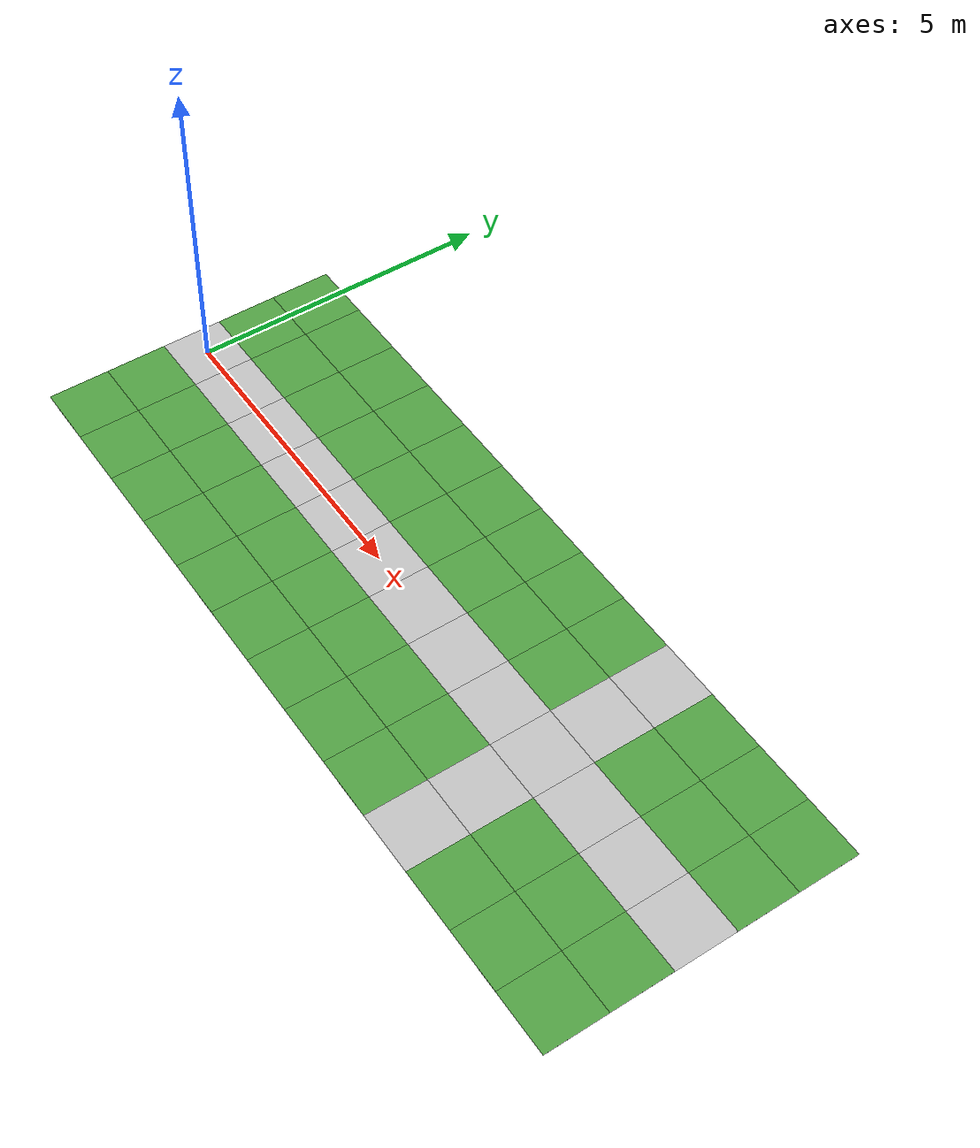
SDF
<sdf version="1.4">
 <world name="robotour_testing_world">
  <light name="sun" type="directional">
   <pose>0.000000 0.000000 10.000000 0.000000 0.000000 0.000000</pose>
   <diffuse>0.800000 0.800000 0.800000 1.000000</diffuse>
   <specular>0.200000 0.200000 0.200000 1.000000</specular>
   <attenuation>
    <range>1000.000000</range>
    <constant>0.900000</constant>
    <linear>0.010000</linear>
    <quadratic>0.001000</quadratic>
   </attenuation>
   <direction>0.500000 0.100000 -0.900000</direction>
  </light>
  <physics type="ode">
   <max_step_size>0.005000</max_step_size>
   <real_time_factor>1.000000</real_time_factor>
   <real_time_update_rate>200.000000</real_time_update_rate>
   <gravity>0.000000 0.000000 -9.800000</gravity>
  </physics>
  <scene>
   <ambient>0.400000 0.400000 0.400000 1.000000</ambient>
   <background>0.700000 0.700000 0.700000 1.000000</background>
   <shadows>1</shadows>
  </scene>
  <include><uri>model://pavement_plane</uri><name>pavement_plane_0</name></include>
  <include><uri>model://grass_plane</uri><name>grass_plane_0_0</name><pose>0 -1 0   0 0 0</pose></include>
  <include><uri>model://grass_plane</uri><name>grass_plane_0_1</name><pose>0 2 0   0 0 0</pose></include>
  <include><uri>model://grass_plane</uri><name>grass_plane_0_2</name><pose>0 1 0   0 0 0</pose></include>
  <include><uri>model://grass_plane</uri><name>grass_plane_0_3</name><pose>0 -2 0   0 0 0</pose></include>
  <include><uri>model://pavement_plane</uri><name>pavement_plane_1</name><pose>1 0 0   0 0 0</pose></include>
  <include><uri>model://grass_plane</uri><name>grass_plane_1_0</name><pose>1 -1 0   0 0 0</pose></include>
  <include><uri>model://grass_plane</uri><name>grass_plane_1_1</name><pose>1 2 0   0 0 0</pose></include>
  <include><uri>model://grass_plane</uri><name>grass_plane_1_2</name><pose>1 1 0   0 0 0</pose></include>
  <include><uri>model://grass_plane</uri><name>grass_plane_1_3</name><pose>1 -2 0   0 0 0</pose></include>
  <include><uri>model://pavement_plane</uri><name>pavement_plane_2</name><pose>2 0 0   0 0 0</pose></include>
  <include><uri>model://grass_plane</uri><name>grass_plane_2_0</name><pose>2 -1 0   0 0 0</pose></include>
  <include><uri>model://grass_plane</uri><name>grass_plane_2_1</name><pose>2 2 0   0 0 0</pose></include>
  <include><uri>model://grass_plane</uri><name>grass_plane_2_2</name><pose>2 1 0   0 0 0</pose></include>
  <include><uri>model://grass_plane</uri><name>grass_plane_2_3</name><pose>2 -2 0   0 0 0</pose></include>
  <include><uri>model://pavement_plane</uri><name>pavement_plane_3</name><pose>3 0 0   0 0 0</pose></include>
  <include><uri>model://grass_plane</uri><name>grass_plane_3_0</name><pose>3 -1 0   0 0 0</pose></include>
  <include><uri>model://grass_plane</uri><name>grass_plane_3_1</name><pose>3 2 0   0 0 0</pose></include>
  <include><uri>model://grass_plane</uri><name>grass_plane_3_2</name><pose>3 1 0   0 0 0</pose></include>
  <include><uri>model://grass_plane</uri><name>grass_plane_3_3</name><pose>3 -2 0   0 0 0</pose></include>
  <include><uri>model://pavement_plane</uri><name>pavement_plane_4</name><pose>4 0 0   0 0 0</pose></include>
  <include><uri>model://grass_plane</uri><name>grass_plane_4_0</name><pose>4 -1 0   0 0 0</pose></include>
  <include><uri>model://grass_plane</uri><name>grass_plane_4_1</name><pose>4 2 0   0 0 0</pose></include>
  <include><uri>model://grass_plane</uri><name>grass_plane_4_2</name><pose>4 1 0   0 0 0</pose></include>
  <include><uri>model://grass_plane</uri><name>grass_plane_4_3</name><pose>4 -2 0   0 0 0</pose></include>
  <include><uri>model://pavement_plane</uri><name>pavement_plane_5</name><pose>5 0 0   0 0 0</pose></include>
  <include><uri>model://grass_plane</uri><name>grass_plane_5_0</name><pose>5 -1 0   0 0 0</pose></include>
  <include><uri>model://grass_plane</uri><name>grass_plane_5_1</name><pose>5 2 0   0 0 0</pose></include>
  <include><uri>model://grass_plane</uri><name>grass_plane_5_2</name><pose>5 1 0   0 0 0</pose></include>
  <include><uri>model://grass_plane</uri><name>grass_plane_5_3</name><pose>5 -2 0   0 0 0</pose></include>
  <include><uri>model://pavement_plane</uri><name>pavement_plane_6</name><pose>6 0 0   0 0 0</pose></include>
  <include><uri>model://grass_plane</uri><name>grass_plane_6_0</name><pose>6 -1 0   0 0 0</pose></include>
  <include><uri>model://grass_plane</uri><name>grass_plane_6_1</name><pose>6 2 0   0 0 0</pose></include>
  <include><uri>model://grass_plane</uri><name>grass_plane_6_2</name><pose>6 1 0   0 0 0</pose></include>
  <include><uri>model://grass_plane</uri><name>grass_plane_6_3</name><pose>6 -2 0   0 0 0</pose></include>
  <include><uri>model://pavement_plane</uri><name>pavement_plane_7</name><pose>7 0 0   0 0 0</pose></include>
  <include><uri>model://grass_plane</uri><name>grass_plane_7_0</name><pose>7 -1 0   0 0 0</pose></include>
  <include><uri>model://grass_plane</uri><name>grass_plane_7_1</name><pose>7 2 0   0 0 0</pose></include>
  <include><uri>model://grass_plane</uri><name>grass_plane_7_2</name><pose>7 1 0   0 0 0</pose></include>
  <include><uri>model://grass_plane</uri><name>grass_plane_7_3</name><pose>7 -2 0   0 0 0</pose></include>
  <include><uri>model://pavement_plane</uri><name>pavement_plane_8</name><pose>8 0 0   0 0 0</pose></include>
  <include><uri>model://grass_plane</uri><name>grass_plane_8_0</name><pose>8 -1 0   0 0 0</pose></include>
  <include><uri>model://grass_plane</uri><name>grass_plane_8_1</name><pose>8 2 0   0 0 0</pose></include>
  <include><uri>model://grass_plane</uri><name>grass_plane_8_2</name><pose>8 1 0   0 0 0</pose></include>
  <include><uri>model://grass_plane</uri><name>grass_plane_8_3</name><pose>8 -2 0   0 0 0</pose></include>
  <include><uri>model://pavement_plane</uri><name>pavement_plane_9</name><pose>9 0 0   0 0 0</pose></include>
  <include><uri>model://pavement_plane</uri><name>pavement_plane_9_0</name><pose>9 -1 0   0 0 0</pose></include>
  <include><uri>model://pavement_plane</uri><name>pavement_plane_9_1</name><pose>9 2 0   0 0 0</pose></include>
  <include><uri>model://pavement_plane</uri><name>pavement_plane_9_2</name><pose>9 1 0   0 0 0</pose></include>
  <include><uri>model://pavement_plane</uri><name>pavement_plane_9_3</name><pose>9 -2 0   0 0 0</pose></include>
  <include><uri>model://pavement_plane</uri><name>pavement_plane_10</name><pose>10 0 0   0 0 0</pose></include>
  <include><uri>model://grass_plane</uri><name>grass_plane_10_0</name><pose>10 -1 0   0 0 0</pose></include>
  <include><uri>model://grass_plane</uri><name>grass_plane_10_1</name><pose>10 2 0   0 0 0</pose></include>
  <include><uri>model://grass_plane</uri><name>grass_plane_10_2</name><pose>10 1 0   0 0 0</pose></include>
  <include><uri>model://grass_plane</uri><name>grass_plane_10_3</name><pose>10 -2 0   0 0 0</pose></include>
  <include><uri>model://pavement_plane</uri><name>pavement_plane_11</name><pose>11 0 0   0 0 0</pose></include>
  <include><uri>model://grass_plane</uri><name>grass_plane_11_0</name><pose>11 -1 0   0 0 0</pose></include>
  <include><uri>model://grass_plane</uri><name>grass_plane_11_1</name><pose>11 2 0   0 0 0</pose></include>
  <include><uri>model://grass_plane</uri><name>grass_plane_11_2</name><pose>11 1 0   0 0 0</pose></include>
  <include><uri>model://grass_plane</uri><name>grass_plane_11_3</name><pose>11 -2 0   0 0 0</pose></include>
  <include><uri>model://pavement_plane</uri><name>pavement_plane_12</name><pose>12 0 0   0 0 0</pose></include>
  <include><uri>model://grass_plane</uri><name>grass_plane_12_0</name><pose>12 -1 0   0 0 0</pose></include>
  <include><uri>model://grass_plane</uri><name>grass_plane_12_1</name><pose>12 2 0   0 0 0</pose></include>
  <include><uri>model://grass_plane</uri><name>grass_plane_12_2</name><pose>12 1 0   0 0 0</pose></include>
  <include><uri>model://grass_plane</uri><name>grass_plane_12_3</name><pose>12 -2 0   0 0 0</pose></include>
 </world>
</sdf>

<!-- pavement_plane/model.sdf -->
<sdf version='1.4'>
  <model name='pavement_plane'>
    <static>true</static>
    <link name='link'>
      <collision name='collision'>
        <geometry>
          <plane>
            <normal>0 0 1</normal>
            <size>50 50</size>
          </plane>
        </geometry>
        <surface>
          <friction>
            <ode>
              <mu>100</mu>
              <mu2>50</mu2>
            </ode>
          </friction>
        </surface>
      </collision>

  <visual name='visual_0'>
    <pose>0 0 0 0 0 0</pose>

      <cast_shadows>false</cast_shadows>
      <geometry>
        <plane>
          <normal>0 0 1</normal>
          <size>1 1</size>
        </plane>
      </geometry>
      <material>
        <script>
          <uri>model://pavement_plane/materials/scripts</uri>
          <uri>model://pavement_plane/materials/textures</uri>
          <name>vrc/pavement</name>
        </script>
      </material>
    </visual>

    </link>
  </model>
</sdf>

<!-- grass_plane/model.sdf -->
<sdf version='1.4'>
  <model name='grass_plane'>
    <static>true</static>
    <link name='link'>
      <collision name='collision'>
        <geometry>
          <plane>
            <normal>0 0 1</normal>
            <size>500 500</size>
          </plane>
        </geometry>
        <surface>
          <friction>
            <ode>
              <mu>0.5</mu>
              <mu2>.5</mu2>
            </ode>
          </friction>
        </surface>
      </collision>

      <visual name='visual_0'>
        <pose>0 0 0 0 0 0</pose>

        <cast_shadows>false</cast_shadows>
        <geometry>
          <plane>
            <normal>0 0 1</normal>
            <size>1 1</size>
          </plane>
        </geometry>
        <material>
          <script>
            <uri>model://grass_plane/materials/scripts</uri>
            <uri>model://grass_plane/materials/textures</uri>
            <name>vrc/grass</name>
          </script>
        </material>
      </visual>

    </link>
  </model>
</sdf>
